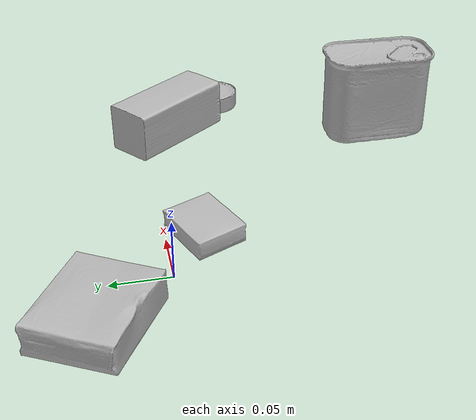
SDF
<sdf version="1.4">
  <world name="default">
    <light name="light1" type="point">
      <pose>0 0 1 0 0 0</pose>
      <diffuse>3 3 3 1</diffuse>
      <specular>3 3 3 1</specular>
    </light>
    <light name="light2" type="point">
      <pose>0 0.5 2 0 0 0</pose>
      <diffuse>1 1 1 1</diffuse>
      <specular>1 1 1 1</specular>
    </light>
    <light name="light3" type="point">
      <pose>0 0.5 2 0 0 0</pose>
      <diffuse>3 3 3 1</diffuse>
      <specular>3 3 3 1</specular>
    </light>
    <scene>
      <ambient>0.7 0.7 0.7</ambient>
    </scene>
    <model name="box1">
      <link name="link_box1">
        <collision name="default">
          <geometry>
            <mesh>
              <uri>model://pudding_box/collision_meshes/collision.obj</uri>
              <scale>0.5 0.5 0.5</scale>
            </mesh>
          </geometry>
          <surface>
            <friction>
              <ode>
                <mu>0.5</mu>
                <mu2>0.5</mu2>
              </ode>
            </friction>
          <contact>
        <ode>
            <max_vel>0</max_vel>
            <min_depth>0.0001</min_depth>
            <kp>1e8</kp>
        </ode>
    </contact></surface>
        </collision>
        <visual name="default">
          <geometry>
            <mesh>
              <uri>model://pudding_box/visual_meshes/visual.dae</uri>
              <scale>0.5 0.5 0.5</scale>
            </mesh>
          </geometry>
        </visual>
        <inertial>
          <mass>0.037190694361925125</mass>
          <pose>0.00024474109522998333 0.00040339428232982755 -0.0002594413817860186 0.005213101817299687 -0.0066037968510836995 0.02007982330137587</pose>
          <inertia>
            <ixx>1.0510541e-05</ixx>
            <iyy>7.071568e-06</iyy>
            <izz>1.552156e-05</izz>
            <ixy>0</ixy>
            <ixz>0</ixz>
            <iyz>0</iyz>
          </inertia>
        </inertial>
      </link>
      <pose>0.04909539595246315 -0.03139108791947365 0.009862901642918587 0.022348453562126686 -0.01139174087603431 -1.1676675215215486</pose>
    </model>
    <model name="box2">
      <link name="link_box2">
        <collision name="default">
          <geometry>
            <mesh>
              <uri>model://gelatin_box/collision_meshes/collision.obj</uri>
              <scale>1.0 1.0 1.0</scale>
            </mesh>
          </geometry>
          <surface>
            <friction>
              <ode>
                <mu>0.5</mu>
                <mu2>0.5</mu2>
              </ode>
            </friction>
          <contact>
        <ode>
            <max_vel>0</max_vel>
            <min_depth>0.0001</min_depth>
            <kp>1e8</kp>
        </ode>
    </contact></surface>
        </collision>
        <visual name="default">
          <geometry>
            <mesh>
              <uri>model://gelatin_box/visual_meshes/visual.dae</uri>
              <scale>1.0 1.0 1.0</scale>
            </mesh>
          </geometry>
        </visual>
        <inertial>
          <mass>0.11744645982980728</mass>
          <pose>0.0004319618456065655 0.00011156871914863586 -0.0003640321083366871 -0.001050371865231848 -0.004755818223747806 0.01644056319675078</pose>
          <inertia>
            <ixx>8.290762e-05</ixx>
            <iyy>5.9220478e-05</iyy>
            <izz>0.00012620387</izz>
            <ixy>0</ixy>
            <ixz>0</ixz>
            <iyz>0</iyz>
          </inertia>
        </inertial>
      </link>
      <pose>-0.04394540563225746 0.06065673753619194 0.015168314799666405 0.005597458074695383 -0.007304562601562208 -2.108623473995949</pose>
    </model>
    <model name="box3">
      <link name="link_box3">
        <collision name="default">
          <geometry>
            <mesh>
              <uri>model://wood_block/collision_meshes/collision.obj</uri>
              <scale>0.5 0.5 0.5</scale>
            </mesh>
          </geometry>
          <surface>
            <friction>
              <ode>
                <mu>0.5</mu>
                <mu2>0.5</mu2>
              </ode>
            </friction>
          <contact>
        <ode>
            <max_vel>0</max_vel>
            <min_depth>0.0001</min_depth>
            <kp>1e8</kp>
        </ode>
    </contact></surface>
        </collision>
        <visual name="default">
          <geometry>
            <mesh>
              <uri>model://wood_block/visual_meshes/visual.dae</uri>
              <scale>0.5 0.5 0.5</scale>
            </mesh>
          </geometry>
        </visual>
        <inertial>
          <mass>0.2439567744731903</mass>
          <pose>-2.906657982748584e-06 -0.00028540476341731846 0.00013204292918089777 -0.05220841280222248 -0.00519269633387802 -0.006861376952924709</pose>
          <inertia>
            <ixx>8.161277e-05</ixx>
            <iyy>0.00025781477</iyy>
            <izz>0.0002568504</izz>
            <ixy>0</ixy>
            <ixz>0</ixz>
            <iyz>0</iyz>
          </inertia>
        </inertial>
      </link>
      <pose>0.2248416393995285 -0.025648022070527077 0.022629253566265106 -0.00520841633499137 0.005718751452269592 -0.9085341034237451</pose>
    </model>
    <model name="can1">
      <link name="link_can1">
        <collision name="default">
          <geometry>
            <mesh>
              <uri>model://tuna_fish_can/collision_meshes/collision.obj</uri>
              <scale>0.5 0.5 0.5</scale>
            </mesh>
          </geometry>
          <surface>
            <friction>
              <ode>
                <mu>0.5</mu>
                <mu2>0.5</mu2>
              </ode>
            </friction>
          <contact>
        <ode>
            <max_vel>0</max_vel>
            <min_depth>0.0001</min_depth>
            <kp>1e8</kp>
        </ode>
    </contact></surface>
        </collision>
        <visual name="default">
          <geometry>
            <mesh>
              <uri>model://tuna_fish_can/visual_meshes/visual.dae</uri>
              <scale>0.5 0.5 0.5</scale>
            </mesh>
          </geometry>
        </visual>
        <inertial>
          <mass>0.02880808152258396</mass>
          <pose>-2.036173827946186e-05 -7.256211574713234e-06 -0.0005269025568850338 -0.0017944794030227106 0.00017162104037918286 0.24054189207372795</pose>
          <inertia>
            <ixx>3.894896e-06</ixx>
            <iyy>3.878662e-06</iyy>
            <izz>6.6647226e-06</izz>
            <ixy>0</ixy>
            <ixz>0</ixz>
            <iyz>0</iyz>
          </inertia>
        </inertial>
      </link>
      <pose>0.27836230397224426 -0.08158052712678909 0.008520000614225864 2.4981241918915986e-08 -1.1654660311698352e-08 -1.8985048383548992</pose>
    </model>
    <model name="can2">
      <link name="link_can2">
        <collision name="default">
          <geometry>
            <mesh>
              <uri>model://potted_meat_can/collision_meshes/collision.obj</uri>
              <scale>1.0 1.0 1.0</scale>
            </mesh>
          </geometry>
          <surface>
            <friction>
              <ode>
                <mu>0.5</mu>
                <mu2>0.5</mu2>
              </ode>
            </friction>
          <contact>
        <ode>
            <max_vel>0</max_vel>
            <min_depth>0.0001</min_depth>
            <kp>1e8</kp>
        </ode>
    </contact></surface>
        </collision>
        <visual name="default">
          <geometry>
            <mesh>
              <uri>model://potted_meat_can/visual_meshes/visual.dae</uri>
              <scale>1.0 1.0 1.0</scale>
            </mesh>
          </geometry>
        </visual>
        <inertial>
          <mass>0.21485549211502075</mass>
          <pose>0.00022888135572429746 -5.989110650261864e-05 -0.0006367442547343671 -0.028093358319385277 -0.007232601893117688 0.015406275523281094</pose>
          <inertia>
            <ixx>0.00027638907</ixx>
            <iyy>0.00016792737</iyy>
            <izz>0.00020102048</izz>
            <ixy>0</ixy>
            <ixz>0</ixz>
            <iyz>0</iyz>
          </inertia>
        </inertial>
      </link>
      <pose>0.19398720562458038 -0.2233060747385025 0.04212800785899162 -2.5738501179276415e-08 -6.765723349305746e-07 -0.021502922846091024</pose>
    </model>
  <physics type="ode">
      <max_contacts>50</max_contacts>
      <ode>
        <solver>
          <type>quick</type>
          <iters>75</iters>
        </solver>
        <constraints>
          <contact_max_correcting_vel>0</contact_max_correcting_vel>
          <contact_surface_layer>0</contact_surface_layer>
        </constraints>
      </ode>
    </physics></world>
</sdf>
